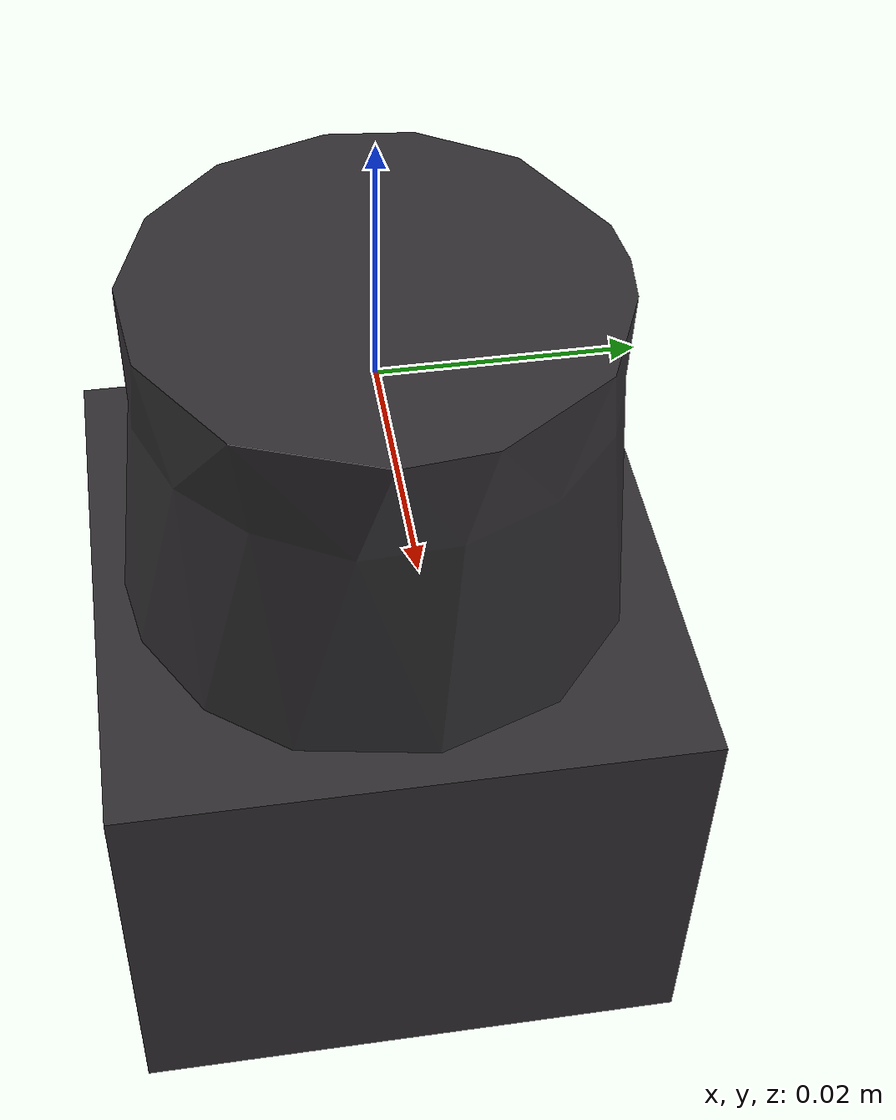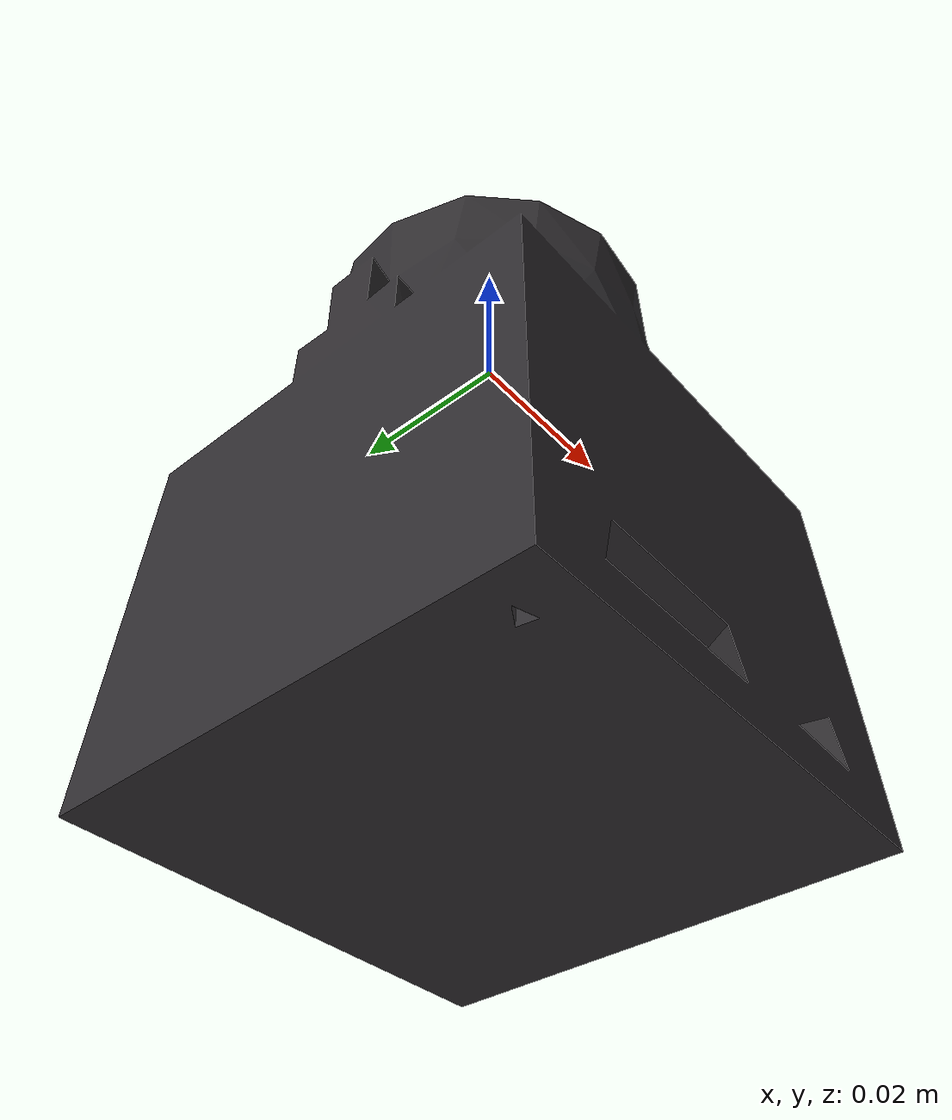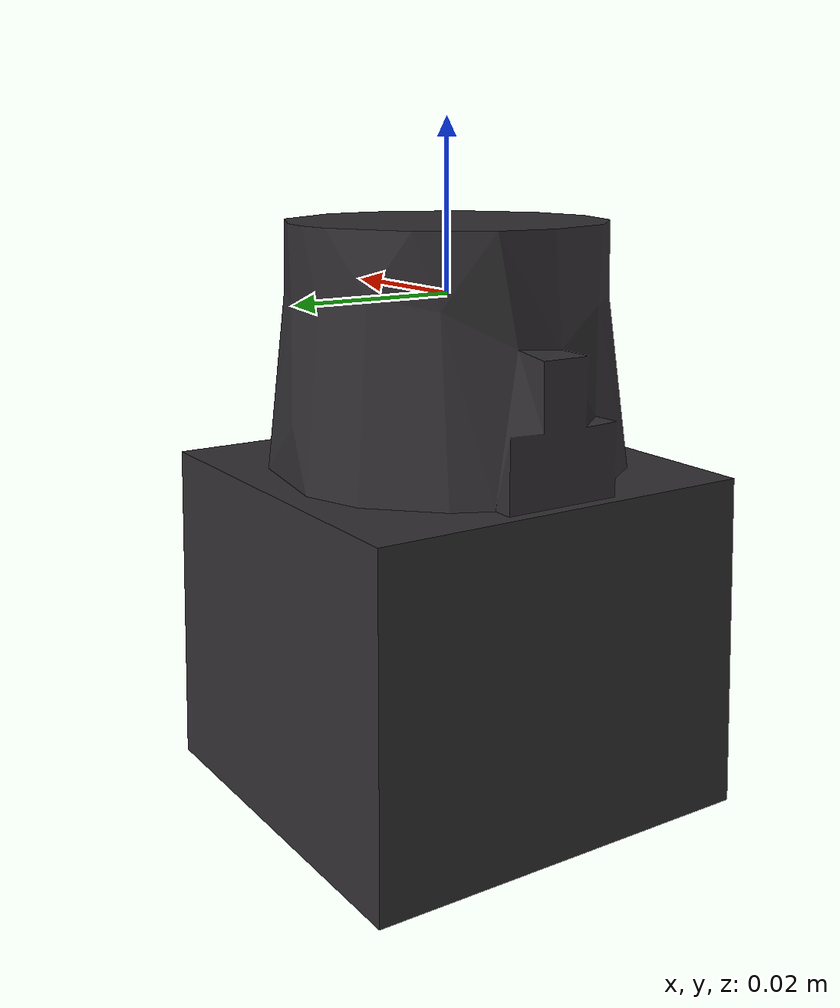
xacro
<robot name="Laser_link"><link name="Laser_link">
    <inertial>
      <origin rpy="0 0 0" xyz="5.67786090348299E-05 -6.35639788811446E-05 -0.0320034700075499" />
      <mass value="0.133672626323353" />
      <inertia ixx="7.01753800311366E-05" ixy="-5.24162580339348E-08" ixz="1.6420597550453E-07" iyy="7.0476938858621E-05" iyz="1.92324838956078E-07" izz="4.61464878783427E-05" />
    </inertial>
    <visual>
      <origin rpy="0 0 0" xyz="0 0 0" />
      <geometry>
        <mesh filename="package://robotican_description/komodo/meshes/Laser_link.STL" />
      </geometry>
      <material name="">
        <color rgba="0.192156862745098 0.1819607843137255 0.1933333333333333 1" />
      </material>
    </visual>
    <collision>
      <origin rpy="0 0 0" xyz="0 0 0" />
      <geometry>
        <mesh filename="package://robotican_description/komodo/meshes/Laser_link.STL" />
      </geometry>
    </collision>
  </link>
  </robot>
